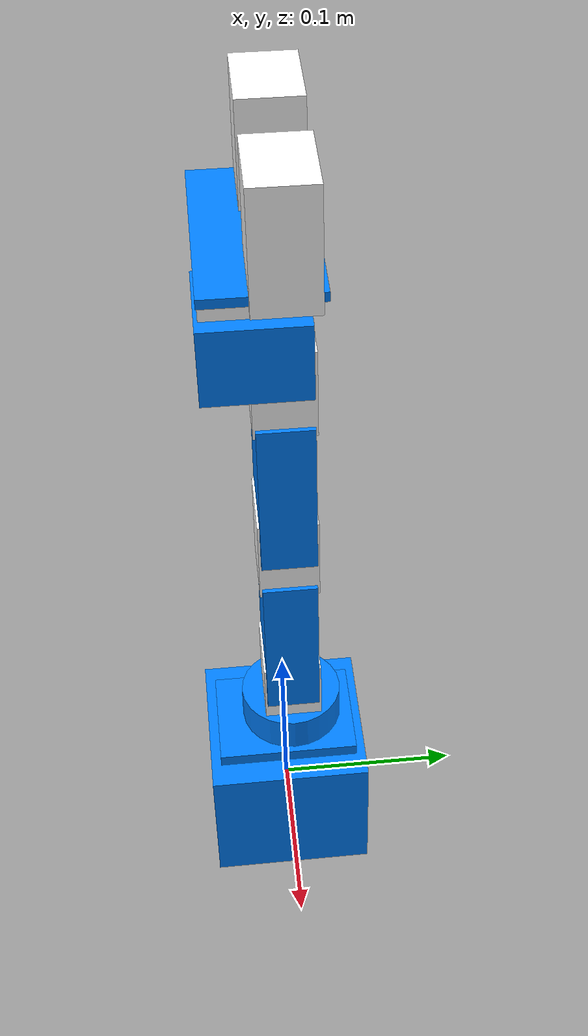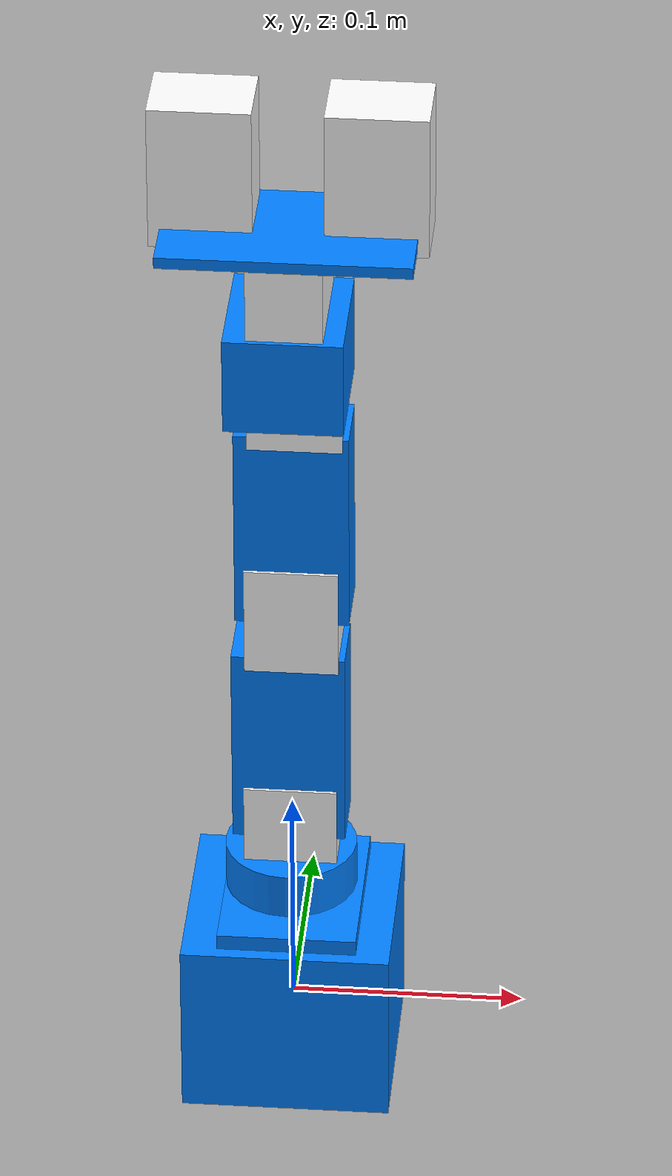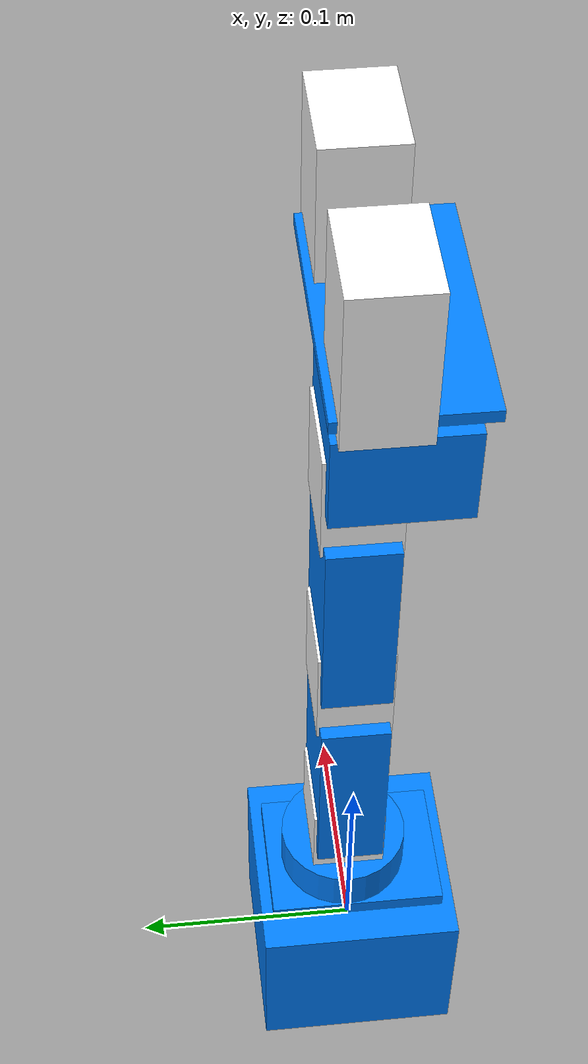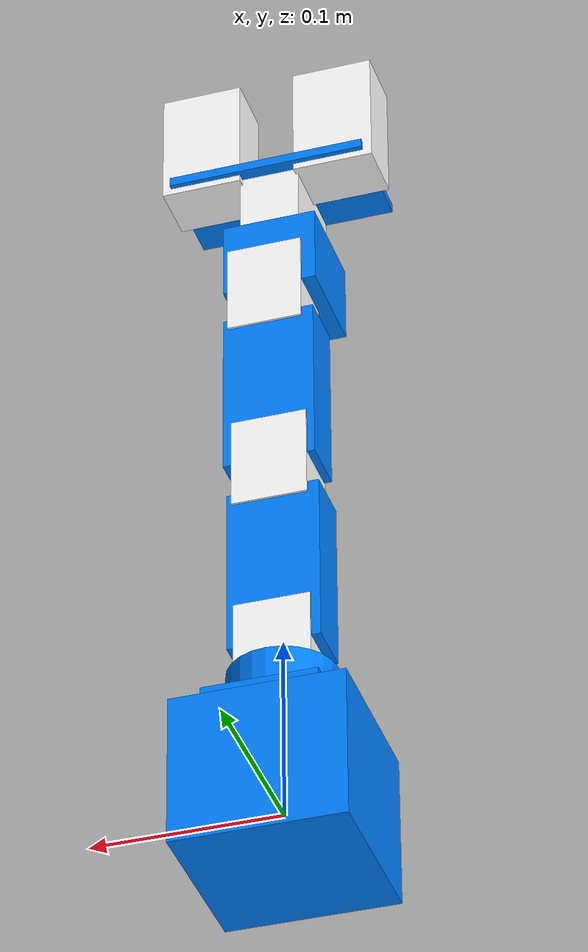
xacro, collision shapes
<?xml version="1.0"?>

<robot xmlns:xacro="http://www.ros.org/wiki/xacro" name="arm">

  <material name="red">
    <color rgba="1 0 0 1"/>
  </material>

  <material name="blue">
    <color rgba="0 0.5 1 1"/>
  </material>

   <!-- Root Link -->
  <link name="world"/>

  <joint name="base_joint" type="fixed">
    <origin xyz="0 0 0" rpy="0 0 0"/>
    <parent link="world"/>
    <child link="base_link"/>
  </joint>

  <link name="base_link">
    <visual>
      <geometry>
        <mesh filename="file://$(find arm_description)/meshes/base_link.stl" scale="0.001 0.001 0.001"/>
      </geometry>
      <origin rpy="0 0 0" xyz="0 0 0"/>
      <material name="blue"/>
    </visual>
    <collision>
      <geometry>
        <box size="0.09 0.09 0.08"/>
      </geometry>
      <origin rpy="0 0 0" xyz="0 0 0.0082"/>
    </collision>
    <inertial>
      <mass value="0.1"/>
      <inertia ixx="1.06682889e+08" ixy="0.0" ixz="0.0" iyy="9.92165844e+07" iyz="0.0" izz="1.26939175e+08"/>
    </inertial>
  </link>

  <joint name="base_1_2" type="fixed">
    <parent link="base_link"/>
    <child link="base_turn"/>
    <origin xyz="-0.0011 -0.011 0.05"/>
  </joint>

  <link name="base_turn">
    <visual>
      <geometry>
        <mesh filename="file://$(find arm_description)/meshes/base_turn.stl" scale="0.001 0.001 0.001"/>
      </geometry>
      <origin rpy="0 0 0" xyz="0 0 0"/>
      <material name="blue"/>
    </visual>
    <collision>
      <geometry>
          <box size="0.06 0.079 0.007"/>
        </geometry>
      <origin rpy="0 0 0" xyz="0.0015 0.0112 0.0016"/>
    </collision>
    <inertial>
      <mass value="0.1"/>
      <inertia ixx="1.35223008e+07" ixy="0.0" ixz="0.0" iyy="8.13814925e+06" iyz="0.0" izz="2.14903814e+07"/>
    </inertial>
  </link>

  <joint name="j0" type="revolute">
    <parent link="base_turn"/>
    <child link="base_turn_rot"/>
    <origin xyz="-0.0 0.0155 0.013" rpy = "0 0 -1.57"/>
    <axis xyz="0 0 1" />
    <limit effort="300" velocity="0.1" lower="-2.57" upper="2.57"/>
  </joint>

  <link name="base_turn_rot">
    <visual>
      <geometry>
        <mesh filename="file://$(find arm_description)/meshes/base_turn_table_rot.stl" scale="0.001 0.001 0.001"/>
      </geometry>
      <material name="blue"/>
    </visual>
    <collision>
      <geometry>
          <cylinder radius="0.0285" length="0.0205"/>
        </geometry>
      <origin rpy="0 0 0" xyz="0 0 0.0031"/>
    </collision>

    <inertial>
      <mass value="0.1"/>
      <inertia ixx="0.001" ixy="0.0" ixz="0.0" iyy="0.001" iyz="0.0" izz="0.001"/>
    </inertial>
  </link>

  <joint name="base_turn_rot_dyn2" type="fixed">
    <parent link="base_turn_rot"/>
    <child link="dyn2"/>
    <origin xyz="0 0 0.0385" rpy="0 1.57 1.57 "/>
  </joint>

  <link name="dyn2">
    <visual>
      <geometry>
        <mesh filename="file://$(find arm_description)/meshes/dyn.stl" scale="0.01 0.01 0.01"/>
      </geometry>
      <origin rpy="0 0 0" xyz="0 0 0"/>
      <material name="white">
        <color rgba="1 1 1 1"/>
      </material>
    </visual>
    <collision>
      <geometry>
          <box size="0.05 0.032 0.04"/>
        </geometry>
      <origin rpy="0 0 0" xyz="0.0135 0 0.001"/>
    </collision>
     <inertial>
      <mass value="0.1"/>
      <inertia ixx="6.90013881e-05" ixy="0.0" ixz="0.0" iyy="1.24554875e-04" iyz="0.0" izz="1.04295793e-04"/>
    </inertial>
  </link>

  <joint name="j1" type="revolute">
    <parent link="dyn2"/>
    <child link="dyn2_r"/>
    <origin xyz="0 0 0.0" rpy="0 0 0"/>
    <axis xyz="0 0 1" />
    <limit effort="300" velocity="0.1" lower="-3.14" upper="3.14"/>
  </joint>

  <link name="dyn2_r">

  </link>

  <joint name="dyn2_f4" type="fixed">
    <parent link="dyn2_r"/>
    <child link="f4"/>
    <origin xyz="-0.047 0.0 -0.003" rpy="0 1.57 1.57"/>
  </joint>

  <link name="f4">
    <visual>
      <geometry>
        <mesh filename="file://$(find arm_description)/meshes/f4_n_f3.stl" scale="0.001 0.001 0.001"/>
      </geometry>
      <origin rpy="0 0 0" xyz="0 0 0"/>
      <material name="blue"/>
    </visual>
    <collision>
      <geometry>
          <box size="0.0485 0.092 0.0295"/>
        </geometry>
      <origin rpy="0 0 0" xyz="-0.0033 -0.014 0"/>
    </collision>
     <inertial>
      <mass value="0.1"/>
      <inertia ixx="6.90013881e-05" ixy="0.0" ixz="0.0" iyy="1.24554875e-04" iyz="0.0" izz="1.04295793e-04"/>
    </inertial>
  </link>

  <joint name="d4_dyn3" type="fixed">
    <parent link="f4"/>
    <child link="dyn3"/>
    <origin xyz="-0.004 0.0645 0 " rpy="-1.57 3.14 1.57"/>
  </joint>

  <link name="dyn3">
    <visual>
      <geometry>
        <mesh filename="file://$(find arm_description)/meshes/dyn.stl" scale="0.01 0.01 0.01"/>
      </geometry>
      <origin rpy="0 0 0" xyz="0 0 0"/>
      <material name="white">
        <color rgba="1 1 1 1"/>
      </material>
    </visual>
    <collision>
      <geometry>
          <box size="0.05 0.032 0.04"/>
        </geometry>
      <origin rpy="0 0 0" xyz="0.0135 0 0.001"/>
    </collision>
     <inertial>
      <mass value="0.1"/>
      <inertia ixx="6.90013881e-05" ixy="0.0" ixz="0.0" iyy="1.24554875e-04" iyz="0.0" izz="1.04295793e-04"/>
    </inertial>
  </link>

  <joint name="j2" type="revolute">
    <parent link="dyn3"/>
    <child link="dyn3_r"/>
    <origin xyz="0 0 0.0" rpy="0 0 0"/>
    <axis xyz="0 0 1" />
    <limit effort="300" velocity="0.1" lower="-3.14" upper="3.14"/>
  </joint>

 <link name="dyn3_r">

  </link>

  <joint name="dyn3_f5" type="fixed">
    <parent link="dyn3_r"/>
    <child link="f5"/>
    <origin xyz="-0.046 -0.0 -0.002" rpy="1.57 1.57 3.1415 "/>
  </joint>

  <link name="f5">
    <visual>
      <geometry>
        <mesh filename="file://$(find arm_description)/meshes/f4_n_f3.stl" scale="0.001 0.001 0.001"/>
      </geometry>
      <origin rpy="0 0 0" xyz="0 0 0"/>
      <material name="blue"/>
    </visual>
    <collision>
      <geometry>
          <box size="0.0485 0.092 0.0295"/>
        </geometry>
      <origin rpy="0 0 0" xyz="-0.0033 -0.014 0"/>
      <origin rpy="0 0 0" xyz="0 0 0"/>
    </collision>

    <inertial>
      <mass value="0.1"/>
  <inertia ixx="0.001" ixy="0.0" ixz="0.0" iyy="0.001" iyz="0.0" izz="0.001"/>    </inertial>
  </link>

  <joint name="f5_dyn4" type="fixed">
    <parent link="f5"/>
    <child link="dyn4"/>
    <origin xyz="-0.004 0.065 -0.0" rpy="-1.57 3.1415 1.57 "/>
  </joint>

  <link name="dyn4">
    <visual>
      <geometry>
        <mesh filename="file://$(find arm_description)/meshes/dyn.stl" scale="0.01 0.01 0.01"/>
      </geometry>
      <origin rpy="0 0 0" xyz="0 0 0"/>
      <material name="white">
        <color rgba="1 1 1 1"/>
      </material>
    </visual>
    <collision>
      <geometry>
          <box size="0.05 0.032 0.04"/>
        </geometry>
      <origin rpy="0 0 0" xyz="0.0135 0 0.001"/>
      <origin rpy="0 0 0" xyz="0 0 0"/>
    </collision>

    <inertial>
      <mass value="0.1"/>
      <inertia ixx="6.90013881e-05" ixy="0.0" ixz="0.0" iyy="1.24554875e-04" iyz="0.0" izz="1.04295793e-04"/>
    </inertial>
  </link>

  <joint name="j3" type="revolute">
    <parent link="dyn4"/>
    <child link="dyn4_r"/>
    <origin xyz="0 0 0.0" rpy="0 0 0"/>
    <axis xyz="0 0 1" />
    <limit effort="300" velocity="0.1" lower="-3.14" upper="3.14"/>
  </joint>

  <link name="dyn4_r">

  </link>

  <joint name="f5_wrist" type="fixed">
    <parent link="dyn4_r"/>
    <child link="wrist"/>
    <origin xyz="-0.017 -0.013 0.003" rpy="1.57 1.57 -1.57"/>
  </joint>

  <link name="wrist">
    <visual>
      <geometry>
        <mesh filename="file://$(find arm_description)/meshes/wrist.stl" scale="0.001 0.001 0.001"/>
      </geometry>
      <origin rpy="0 0 0" xyz="0 0 0"/>
      <material name="blue"/>
    </visual>
    <collision>
      <geometry>
        <box size="0.05 0.055 0.043"/>
      </geometry>
      <origin rpy="0 0 0" xyz="0.0044 0 -0.01"/>
    </collision>

     <inertial>
      <mass value="0.1"/>
      <inertia ixx="6.90013881e-05" ixy="0.0" ixz="0.0" iyy="1.24554875e-04" iyz="0.0" izz="1.04295793e-04"/>
    </inertial>
  </link>

  <joint name="wrist_dyn5" type="fixed">
    <parent link="wrist"/>
    <child link="dyn5"/>
    <origin xyz="0.0038 -0.013 0.0275" rpy="0 0 1.57"/>
  </joint>

    <link name="dyn5">
    <visual>
      <geometry>
        <mesh filename="file://$(find arm_description)/meshes/dyn.stl" scale="0.01 0.01 0.01"/>
      </geometry>
      <origin rpy="0 0 0" xyz="0 0 0"/>
      <material name="white">
        <color rgba="1 1 1 1"/>
      </material>
    </visual>
    <collision>
      <geometry>
          <box size="0.05 0.032 0.04"/>
        </geometry>
      <origin rpy="0 0 0" xyz="0.0135 0 0.001"/>
    </collision>
    <inertial>
      <mass value="0.1"/>
      <inertia ixx="6.90013881e-05" ixy="0.0" ixz="0.0" iyy="1.24554875e-04" iyz="0.0" izz="1.04295793e-04"/>
    </inertial>
  </link>

  <joint name="dyn5_dyn5_r" type="fixed">
    <parent link="dyn5"/>
    <child link="dyn5_r"/>
    <origin xyz="0 0 0.0" rpy="0 0 0"/>
    <axis xyz="0 0 1" />
    <limit effort="300" velocity="0.1" lower="-3.14" upper="3.14"/>
  </joint>

  <link name="dyn5_r">

  </link>

  <joint name="wrist_rotate_dyn5" type="fixed">
    <parent link="dyn5_r"/>
    <child link="crawer_base"/>
    <origin xyz="0.015 0 0.019" rpy="0 0 1.57"/>
  </joint>

  <link name="crawer_base">
    <visual>
      <geometry>
        <mesh filename="file://$(find arm_description)/meshes/the_crawer_base.stl" scale="0.001 0.001 0.001"/>
      </geometry>
      <origin rpy="0 0 0" xyz="0 0 0"/>
      <material name="blue"/>
    </visual>
    <collision>
      <geometry>
          <box size="0.106 0.058 0.005"/>
        </geometry>
      <origin rpy="0 0 0" xyz="0 0.005 0.0005"/>
    </collision>

    <inertial>
      <mass value="0.1"/>
      <inertia ixx="6.90013881e-05" ixy="0.0" ixz="0.0" iyy="1.24554875e-04" iyz="0.0" izz="1.04295793e-04"/>
    </inertial>
  </link>

  <joint name="crawer_base_crawer_left" type="fixed">
    <parent link="crawer_base"/>
    <child link="crawer_left"/>
    <origin xyz="-0.03 0.015 0.01" rpy="0 -1.57 0"/>
  </joint>

  <link name="crawer_left">
    <visual>
      <geometry>
        <mesh filename="file://$(find arm_description)/meshes/the_crawer.stl" scale="0.001 0.001 0.001"/>
      </geometry>
      <origin rpy="0 0 0" xyz="0 0 0"/>
      <material name="white">
        <color rgba="1 1 1 1"/>
      </material>
    </visual>
    <collision>
      <geometry>
          <box size="0.064 0.032 0.043"/>
        </geometry>
      <origin rpy="0 0 0" xyz="0.0165 0 0.0063"/>
    </collision>

    <inertial>
      <mass value="0.1"/>
      <inertia ixx="6.90013881e-05" ixy="0.0" ixz="0.0" iyy="1.24554875e-04" iyz="0.0" izz="1.04295793e-04"/>
    </inertial>
  </link>

  <joint name="crawer_base_crawer_right" type="fixed">
    <parent link="crawer_base"/>
    <child link="crawer_right"/>
    <origin xyz="0.03 0.015 0.01" rpy="3.1415 -1.57 0"/>
  </joint>

  <link name="crawer_right">
    <visual>
      <geometry>
        <mesh filename="file://$(find arm_description)/meshes/the_crawer.stl" scale="0.001 0.001 0.001"/>
      </geometry>
      <origin rpy="0 0 0" xyz="0 0 0"/>
      <material name="white">
        <color rgba="1 1 1 1"/>
      </material>
    </visual>
    <collision>
       <geometry>
          <box size="0.064 0.032 0.043"/>
        </geometry>
      <origin rpy="0 0 0" xyz="0.0165 0 0.0063"/>
    </collision>

    <inertial>
      <mass value="0.1"/>
      <inertia ixx="6.90013881e-05" ixy="0.0" ixz="0.0" iyy="1.24554875e-04" iyz="0.0" izz="1.04295793e-04"/>
    </inertial>
  </link>

  <joint name="camera_joint" type="fixed">
      <parent link="base_link"/>
      <child link="camera_link"/>
      <origin xyz="0.0 0 0.00" rpy="0.0 -1.57 0"/>
  </joint>

  <link name="camera_link">
      <visual>
          <geometry>
              <box size="0.01 0.03 0.03"/>
          </geometry>
          <material name="red"/>
      </visual>
  </link>

  <xacro:include filename="$(find arm_description)/urdf/arm_hardware_interface.xacro"/>
  <xacro:arm_hardware_interface/>

  <xacro:include filename="$(find arm_gazebo)/urdf/arm_camera.xacro"/>
  <xacro:arm_camera camera_link="camera_link"/>

  <gazebo>
    <plugin filename="libign_ros2_control-system.so" name="ign_ros2_control::IgnitionROS2ControlPlugin">
      <parameters>$(find arm_control)/config/arm_control.yaml</parameters>
      <controller_manager_prefix_node_name>controller_manager</controller_manager_prefix_node_name>
    </plugin>
  </gazebo>

</robot>
